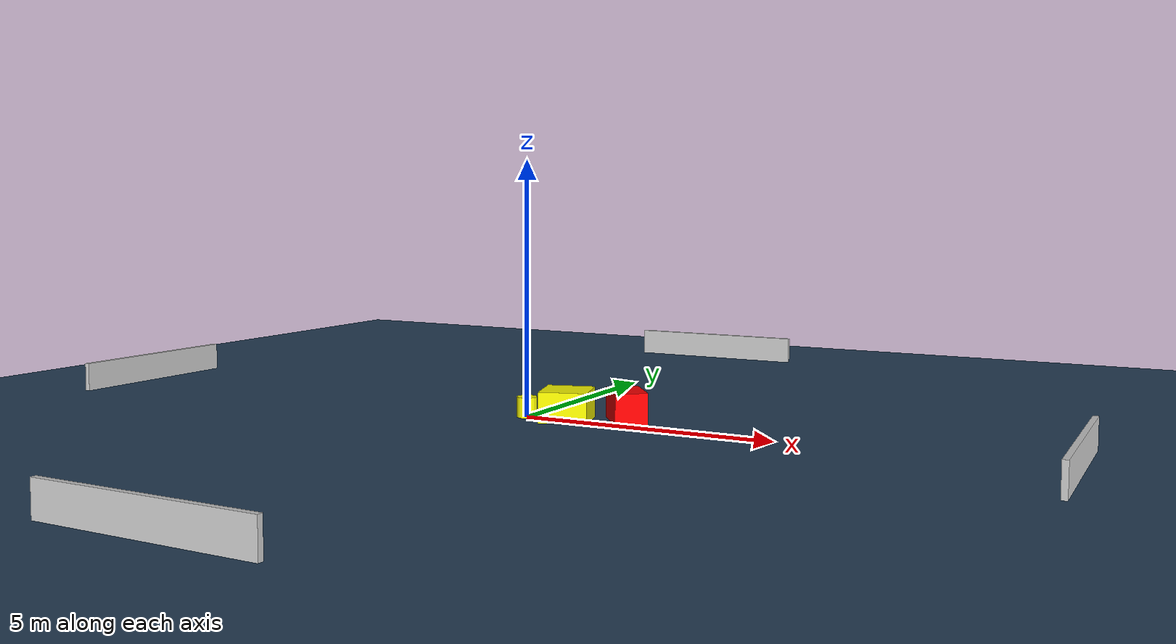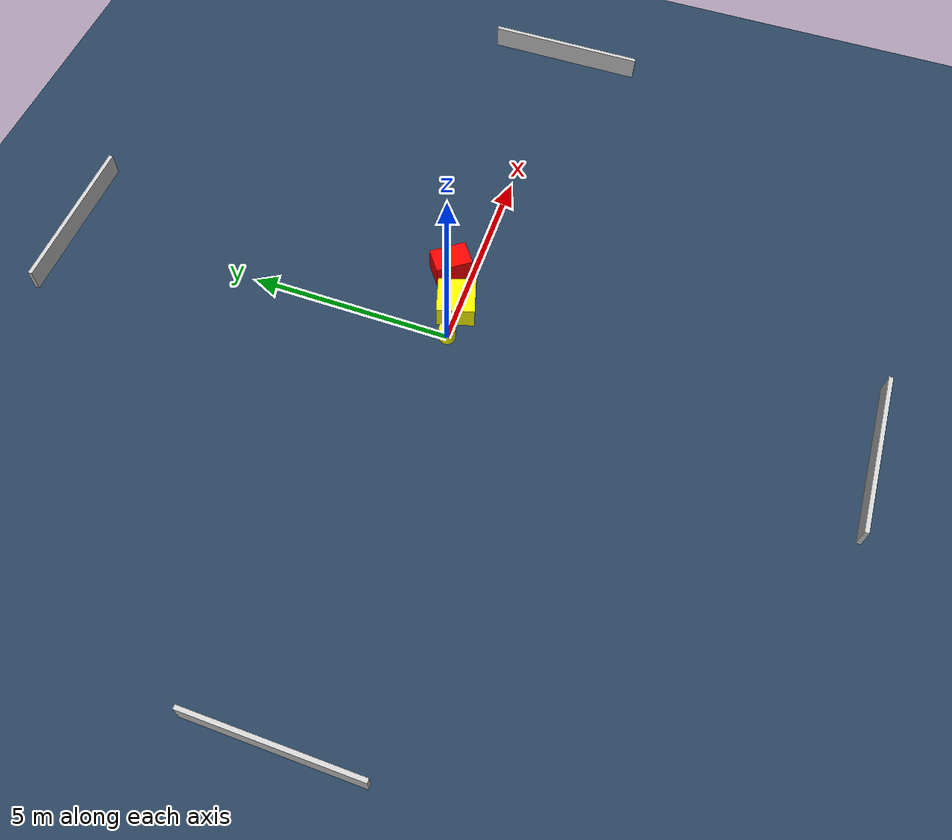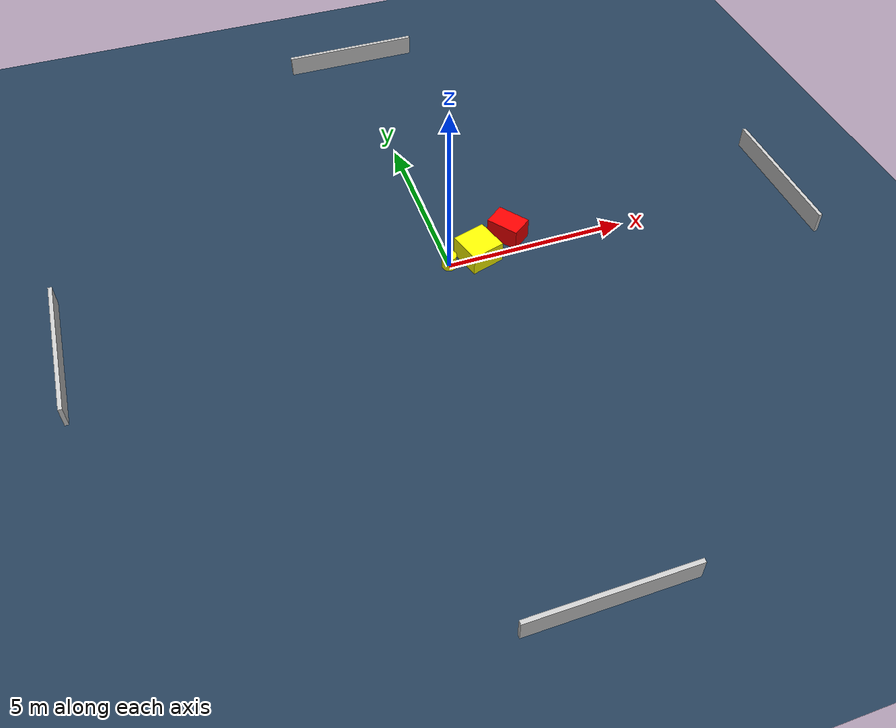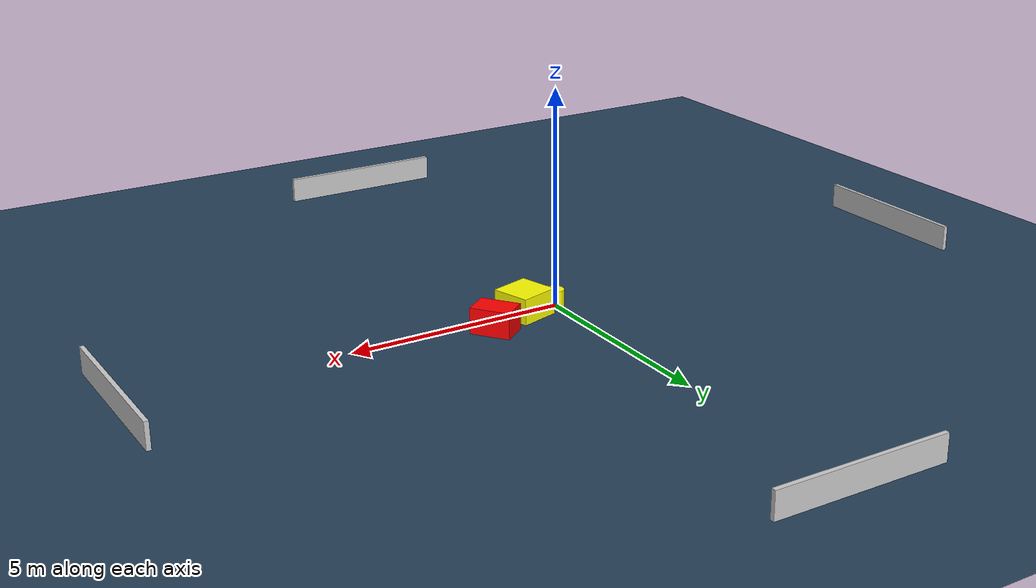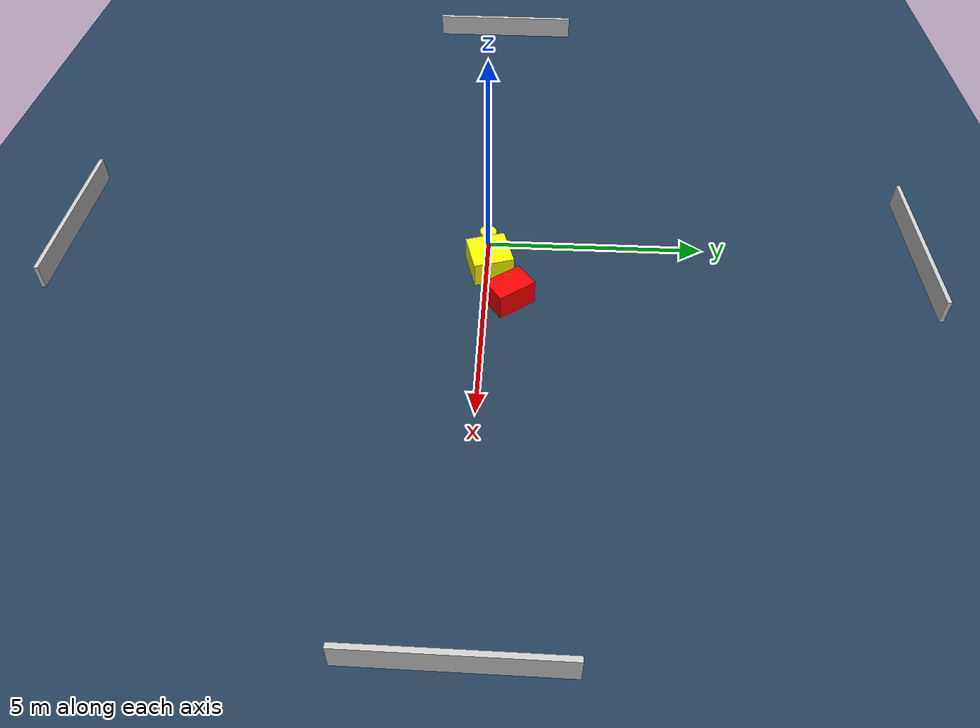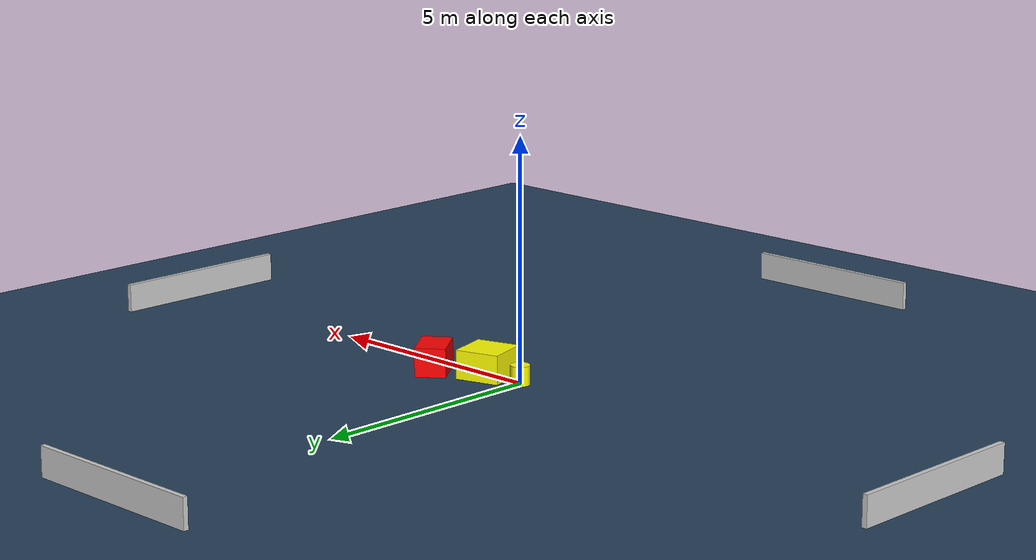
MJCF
<?xml version="1.0" ?>
<mujoco model="generated_environment">
  <option timestep="0.01" integrator="RK4" cone="elliptic"/>
  <default>
    <geom density="1"/>
  </default>
  <asset>
    <texture builtin="gradient" height="3072" name="skybox" rgb1="0.3 0.5 0.7" rgb2="0 0 0" type="skybox" width="512"/>
    <texture builtin="checker" height="300" name="groundplane" rgb1="0.2 0.3 0.4" rgb2="0.1 0.2 0.3" type="2d" width="300"/>
    <material name="groundplane" reflectance="0.2" texrepeat="5 5" texture="groundplane"/>
  </asset>
  <worldbody>
    <light dir="0 0 -1" directional="true" pos="0 0 1.5"/>
    <geom condim="3" friction="0.5 0.005 0.001" material="groundplane" name="floor" pos="0 0 0" size="0 0 0.05" type="plane"/>
    <body name="walls">
      <geom name="wall_1" condim="4" pos="-10.0 0.0 0.3" rgba="0.800000011920929 0.800000011920929 0.800000011920929 1.0" size="0.05 2.0 0.3" type="box"/>
      <geom name="wall_2" condim="4" pos="10.0 0.0 0.3" rgba="0.800000011920929 0.800000011920929 0.800000011920929 1.0" size="0.05 2.0 0.3" type="box"/>
      <geom name="wall_3" condim="4" pos="0.0 -10.0 0.3" rgba="0.800000011920929 0.800000011920929 0.800000011920929 1.0" size="2.0 0.05 0.3" type="box"/>
      <geom name="wall_4" condim="4" pos="0.0 10.0 0.3" rgba="0.800000011920929 0.800000011920929 0.800000011920929 1.0" size="2.0 0.05 0.3" type="box"/>
    </body>
    <body name="robot">
      <joint name="joint_x" type="slide" pos="0 0 0" axis="1 0 0"/>
      <joint name="joint_y" type="slide" pos="0 0 0" axis="0 1 0"/>
      <geom name="robot" type="cylinder" pos="0.0 0.0 0.2" size="0.2 0.2 0.0" mass="5.0" friction="1.0 0.005 0.0001" condim="4" rgba="1.0 1.0 0.0 1.0"/>
    </body>
    <body name="obstacle_1_movable">
      <geom name="obstacle_1_movable" condim="4" pos="0.8446622971518286 0.06981251775063431 0.3" euler="0 0 196.38974307171273" friction="0.0 0.005 0.001" rgba="1.0 1.0 0.0 1.0" size="0.4673247591460571 0.45903167096065645 0.3" type="box" mass="0.1"/>
      <joint type="free"/>
    </body>
    <body name="obstacle_2_static">
      <geom name="obstacle_2_static" condim="4" pos="1.8779284021800648 0.568312919423755 0.3" euler="0 0 126.39964596742688" friction="0.0 0.005 0.001" rgba="1.0 0.0 0.0 1.0" size="0.4593669043354414 0.31665796372679283 0.3" type="box"/>
    </body>
  </worldbody>
  <actuator>
    <motor name="actuator_x" joint="joint_x" gear="1" ctrlrange="-1 1"/>
    <motor name="actuator_y" joint="joint_y" gear="1" ctrlrange="-1 1"/>
  </actuator>
</mujoco>
